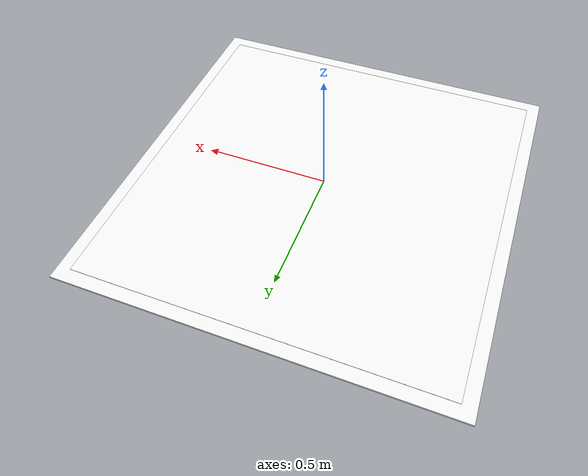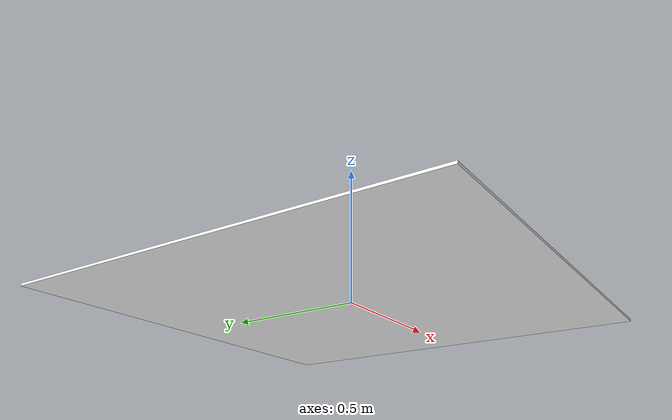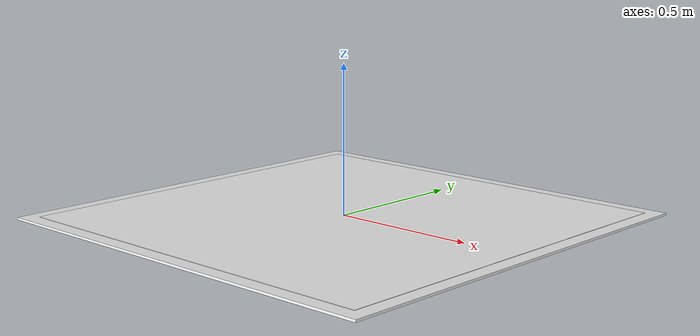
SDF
<?xml version="1.0"?>
<sdf version="1.9">
  <model name="apriltag_36h11_1">
    <static>false</static>
    <link name="tag_link">
      <inertial>
        <mass>0.02</mass>
        <inertia>
          <ixx>1e-4</ixx>
          <ixy>0</ixy>
          <ixz>0</ixz>
          <iyy>1e-4</iyy>
          <iyz>0</iyz>
          <izz>1e-4</izz>
        </inertia>
      </inertial>

      <visual name="tag_backing">
        <pose>0 0 -0.004 0 0 0</pose>
        <geometry>
          <box>
            <size>1.50 1.50 0.008</size>
          </box>
        </geometry>
        <material>
          <ambient>1 1 1 1</ambient>
          <diffuse>1 1 1 1</diffuse>
          <specular>0.05 0.05 0.05 1</specular>
        </material>
      </visual>

      <visual name="tag36h11_1">
        <pose>0 0 0.001 0 0 0</pose>
        <geometry>
          <plane>
            <normal>0 0 1</normal>
            <size>1.40 1.40</size>
          </plane>
        </geometry>
        <material>
          <ambient>1 1 1 1</ambient>
          <diffuse>1 1 1 1</diffuse>
          <specular>0 0 0 1</specular>
          <pbr>
            <metal>
              <albedo_map>model://apriltag_36h11_1/materials/textures/tag36h11_1.png</albedo_map>
              <roughness>1.0</roughness>
              <metalness>0.0</metalness>
            </metal>
          </pbr>
        </material>
      </visual>

    </link>
  </model>
</sdf>
